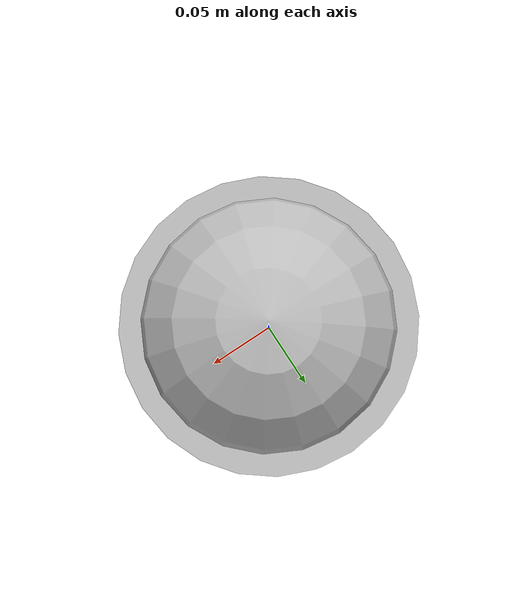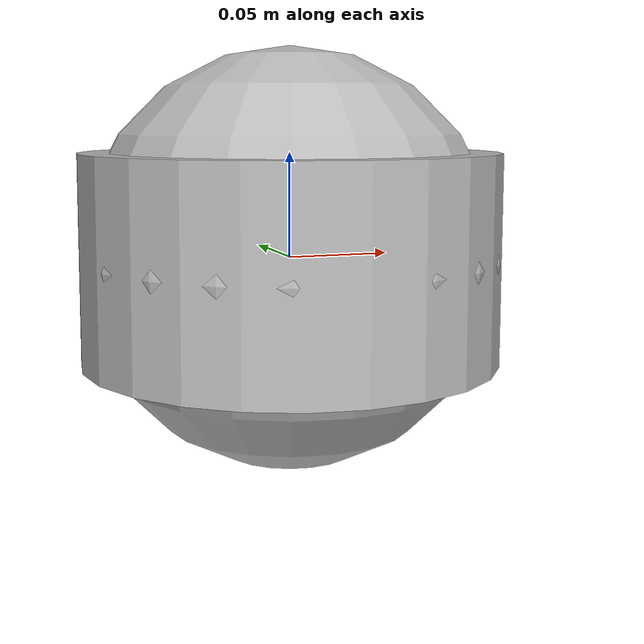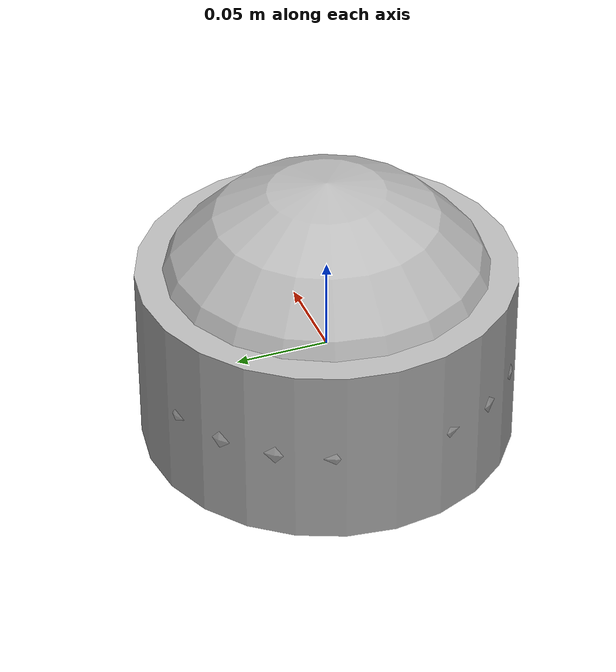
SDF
<?xml version="1.0"?>
<sdf version="1.4">
  <model name="test_model">
  <link name="cube">
    <visual>
      <geometry>
        <box><size>0.1 0.1 0.1</size></box>
      </geometry>
    </visual>
  </link>
  <link name="sphere">
    <visual>
      <geometry>
        <sphere><radius>0.1</radius></sphere>
      </geometry>
    </visual>
  </link>
  <link name="plane">
    <visual>
      <geometry>
        <plane><normal>0 0 1</normal><size>0.1 0.1</size></plane>
      </geometry>
    </visual>
  </link>
  <link name="cylinder">
    <visual>
      <geometry>
        <cylinder><radius>0.1</radius><length>0.1</length></cylinder>
      </geometry>
    </visual>
  </link>
  </model>
</sdf>
